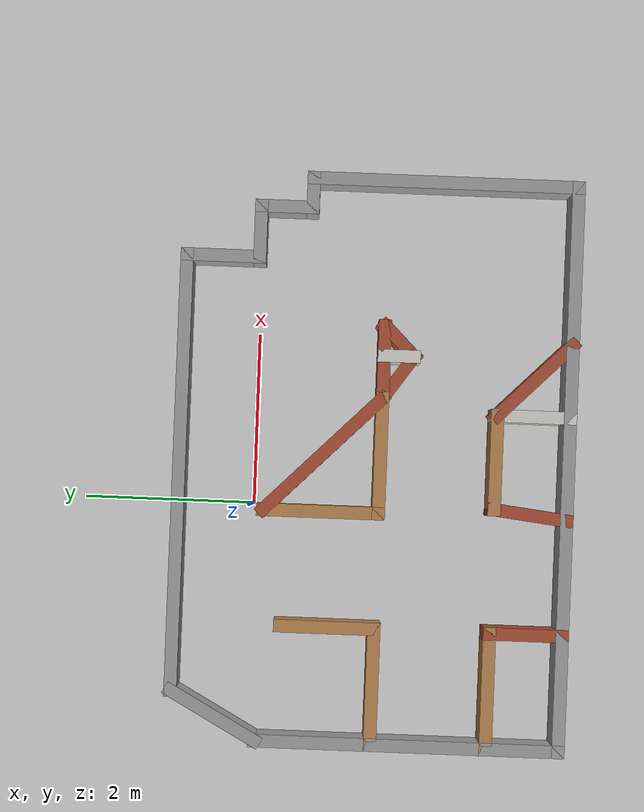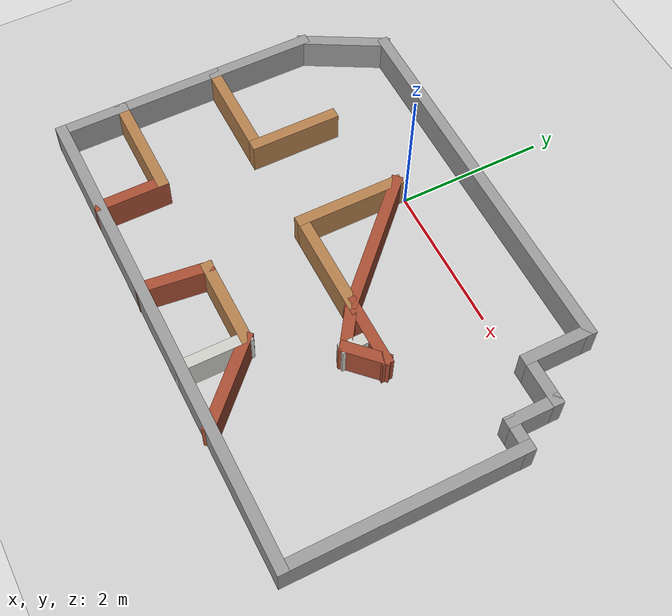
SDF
<sdf version="1.7">
 <world name="default">
  <light name="sun" type="directional">
   <pose>0 0 10 0 -0 0</pose>
   <diffuse>0.8 0.8 0.8 1</diffuse>
   <specular>0.2 0.2 0.2 1</specular>
   <attenuation>
    <range>1000</range>
    <constant>0.9</constant>
    <linear>0.01</linear>
    <quadratic>0.001</quadratic>
   </attenuation>
   <direction>-0.5 0.1 -0.9</direction>
   <spot><inner_angle>0</inner_angle><outer_angle>0</outer_angle><falloff>0</falloff></spot>
  </light>
  <model name="ground_plane">
   <static>1</static>
   <link name="link">
    <collision name="collision">
     <geometry><plane><normal>0 0 1</normal><size>100 100</size></plane></geometry>
     <surface>
      <contact><collide_bitmask>65535</collide_bitmask></contact>
      <friction><ode><mu>100</mu><mu2>50</mu2></ode></friction>
     </surface>
    </collision>
    <visual name="visual">
     <cast_shadows>0</cast_shadows>
     <geometry><plane><normal>0 0 1</normal><size>100 100</size></plane></geometry>
     <material>
      <script><uri>file://media/materials/scripts/gazebo.material</uri><name>Gazebo/Grey</name></script>
     </material>
    </visual>
   </link>
  </model>
  <gravity>0 0 -9.8</gravity>
  <magnetic_field>6e-06 2.3e-05 -4.2e-05</magnetic_field>
  <atmosphere type="adiabatic"/>
  <physics type="ode">
   <max_step_size>0.001</max_step_size>
   <real_time_factor>1</real_time_factor>
   <real_time_update_rate>1000</real_time_update_rate>
  </physics>
  <scene><ambient>0.4 0.4 0.4 1</ambient><background>0.7 0.7 0.7 1</background><shadows>1</shadows></scene>
  <spherical_coordinates>
   <surface_model>EARTH_WGS84</surface_model>
   <latitude_deg>0</latitude_deg>
   <longitude_deg>0</longitude_deg>
   <elevation>0</elevation>
   <heading_deg>0</heading_deg>
  </spherical_coordinates>
  <model name="iros24_1">
   <pose>0.51657 -1.3971 0 0 -0 0</pose>
   <link name="Wall_0">
    <collision name="Wall_0_Collision">
     <geometry><box><size>6.75 0.15 0.45</size></box></geometry>
     <pose>0 0 0.225 0 -0 0</pose>
    </collision>
    <visual name="Wall_0_Visual">
     <pose>0 0 0.225 0 -0 0</pose>
     <geometry><box><size>6.75 0.15 0.45</size></box></geometry>
     <material>
      <script><uri>file://media/materials/scripts/gazebo.material</uri><name>Gazebo/Grey</name></script>
      <ambient>1 1 1 1</ambient>
     </material>
     <meta><layer>0</layer></meta>
    </visual>
    <pose>0.01343 -2.2729 0 0 -0 0</pose>
   </link>
   <link name="Wall_11">
    <collision name="Wall_11_Collision">
     <geometry><box><size>1.5 0.15 0.45</size></box></geometry>
     <pose>0 0 0.225 0 -0 0</pose>
    </collision>
    <visual name="Wall_11_Visual">
     <pose>0 0 0.225 0 -0 0</pose>
     <geometry><box><size>1.5 0.15 0.45</size></box></geometry>
     <material>
      <script><uri>file://media/materials/scripts/gazebo.material</uri><name>Gazebo/Grey</name></script>
      <ambient>1 1 1 1</ambient>
     </material>
     <meta><layer>0</layer></meta>
    </visual>
    <pose>-3.28657 0.602103 0 0 -0 1.5708</pose>
   </link>
   <link name="Wall_21">
    <collision name="Wall_21_Collision">
     <geometry><box><size>1.25 0.15 0.45</size></box></geometry>
     <pose>0 0 0.225 0 -0 0</pose>
    </collision>
    <visual name="Wall_21_Visual">
     <pose>0 0 0.225 0 -0 0</pose>
     <geometry><box><size>1.25 0.15 0.45</size></box></geometry>
     <material>
      <script><uri>file://media/materials/scripts/gazebo.material</uri><name>Gazebo/Wood</name></script>
      <ambient>1 1 1 1</ambient>
     </material>
     <meta><layer>0</layer></meta>
    </visual>
    <pose>0.06343 -1.4229 0 0 -0 0</pose>
   </link>
   <link name="Wall_22">
    <collision name="Wall_22_Collision">
     <geometry><box><size>1 0.15 0.45</size></box></geometry>
     <pose>0 0 0.225 0 -0 0</pose>
    </collision>
    <visual name="Wall_22_Visual">
     <pose>0 0 0.225 0 -0 0</pose>
     <geometry><box><size>1 0.15 0.45</size></box></geometry>
     <material>
      <script><uri>file://media/materials/scripts/gazebo.material</uri><name>Gazebo/CeilingTiled</name></script>
      <ambient>1 1 1 1</ambient>
     </material>
     <meta><layer>0</layer></meta>
    </visual>
    <pose>0.61343 -1.8479 0 0 -0 -1.5708</pose>
   </link>
   <link name="Wall_24">
    <collision name="Wall_24_Collision">
     <geometry><box><size>1.35208 0.15 0.45</size></box></geometry>
     <pose>0 0 0.225 0 -0 0</pose>
    </collision>
    <visual name="Wall_24_Visual">
     <pose>0 0 0.225 0 -0 0</pose>
     <geometry><box><size>1.35208 0.15 0.45</size></box></geometry>
     <material>
      <script><uri>file://media/materials/scripts/gazebo.material</uri><name>Gazebo/Bricks</name></script>
      <ambient>1 1 1 1</ambient>
     </material>
     <meta><layer>0</layer></meta>
    </visual>
    <pose>1.03843 -1.8479 0 0 -0 2.35619</pose>
   </link>
   <link name="Wall_26">
    <collision name="Wall_26_Collision">
     <geometry><box><size>1.00586 0.15 0.45</size></box></geometry>
     <pose>0 0 0.225 0 -0 0</pose>
    </collision>
    <visual name="Wall_26_Visual">
     <pose>0 0 0.225 0 -0 0</pose>
     <geometry><box><size>1.00586 0.15 0.45</size></box></geometry>
     <material>
      <script><uri>file://media/materials/scripts/gazebo.material</uri><name>Gazebo/Bricks</name></script>
      <ambient>1 1 1 1</ambient>
     </material>
     <meta><layer>0</layer></meta>
    </visual>
    <pose>-0.53657 -1.8479 0 0 -0 1.45369</pose>
   </link>
   <link name="Wall_28">
    <collision name="Wall_28_Collision">
     <geometry><box><size>3.25 0.15 0.45</size></box></geometry>
     <pose>0 0 0.225 0 -0 0</pose>
    </collision>
    <visual name="Wall_28_Visual">
     <pose>0 0 0.225 0 -0 0</pose>
     <geometry><box><size>3.25 0.15 0.45</size></box></geometry>
     <material>
      <script><uri>file://media/materials/scripts/gazebo.material</uri><name>Gazebo/Grey</name></script>
      <ambient>1 1 1 1</ambient>
     </material>
     <meta><layer>0</layer></meta>
    </visual>
    <pose>3.31343 -0.722897 0 0 -0 1.5708</pose>
   </link>
   <link name="Wall_3">
    <collision name="Wall_3_Collision">
     <geometry><box><size>1 0.15 0.45</size></box></geometry>
     <pose>0 0 0.225 0 -0 0</pose>
    </collision>
    <visual name="Wall_3_Visual">
     <pose>0 0 0.225 0 -0 0</pose>
     <geometry><box><size>1 0.15 0.45</size></box></geometry>
     <material>
      <script><uri>file://media/materials/scripts/gazebo.material</uri><name>Gazebo/Grey</name></script>
      <ambient>1 1 1 1</ambient>
     </material>
     <meta><layer>0</layer></meta>
    </visual>
    <pose>-3.28657 -1.8479 0 0 -0 1.5708</pose>
   </link>
   <link name="Wall_30">
    <collision name="Wall_30_Collision">
     <geometry><box><size>0.5 0.15 0.45</size></box></geometry>
     <pose>0 0 0.225 0 -0 0</pose>
    </collision>
    <visual name="Wall_30_Visual">
     <pose>0 0 0.225 0 -0 0</pose>
     <geometry><box><size>0.5 0.15 0.45</size></box></geometry>
     <material>
      <script><uri>file://media/materials/scripts/gazebo.material</uri><name>Gazebo/Grey</name></script>
      <ambient>1 1 1 1</ambient>
     </material>
     <meta><layer>0</layer></meta>
    </visual>
    <pose>3.13843 0.827103 0 0 -0 3.14159</pose>
   </link>
   <link name="Wall_31">
    <collision name="Wall_31_Collision">
     <geometry><box><size>0.75 0.15 0.45</size></box></geometry>
     <pose>0 0 0.225 0 -0 0</pose>
    </collision>
    <visual name="Wall_31_Visual">
     <pose>0 0 0.225 0 -0 0</pose>
     <geometry><box><size>0.75 0.15 0.45</size></box></geometry>
     <material>
      <script><uri>file://media/materials/scripts/gazebo.material</uri><name>Gazebo/Grey</name></script>
      <ambient>1 1 1 1</ambient>
     </material>
     <meta><layer>0</layer></meta>
    </visual>
    <pose>2.96343 1.1271 0 0 -0 1.5708</pose>
   </link>
   <link name="Wall_32">
    <collision name="Wall_32_Collision">
     <geometry><box><size>0.75 0.15 0.45</size></box></geometry>
     <pose>0 0 0.225 0 -0 0</pose>
    </collision>
    <visual name="Wall_32_Visual">
     <pose>0 0 0.225 0 -0 0</pose>
     <geometry><box><size>0.75 0.15 0.45</size></box></geometry>
     <material>
      <script><uri>file://media/materials/scripts/gazebo.material</uri><name>Gazebo/Grey</name></script>
      <ambient>1 1 1 1</ambient>
     </material>
     <meta><layer>0</layer></meta>
    </visual>
    <pose>2.66343 1.4271 0 0 -0 3.14159</pose>
   </link>
   <link name="Wall_33">
    <collision name="Wall_33_Collision">
     <geometry><box><size>1 0.15 0.45</size></box></geometry>
     <pose>0 0 0.225 0 -0 0</pose>
    </collision>
    <visual name="Wall_33_Visual">
     <pose>0 0 0.225 0 -0 0</pose>
     <geometry><box><size>1 0.15 0.45</size></box></geometry>
     <material>
      <script><uri>file://media/materials/scripts/gazebo.material</uri><name>Gazebo/Grey</name></script>
      <ambient>1 1 1 1</ambient>
     </material>
     <meta><layer>0</layer></meta>
    </visual>
    <pose>2.36343 1.8521 0 0 -0 1.5708</pose>
   </link>
   <link name="Wall_34">
    <collision name="Wall_34_Collision">
     <geometry><box><size>5.25 0.15 0.45</size></box></geometry>
     <pose>0 0 0.225 0 -0 0</pose>
    </collision>
    <visual name="Wall_34_Visual">
     <pose>0 0 0.225 0 -0 0</pose>
     <geometry><box><size>5.25 0.15 0.45</size></box></geometry>
     <material>
      <script><uri>file://media/materials/scripts/gazebo.material</uri><name>Gazebo/Grey</name></script>
      <ambient>1 1 1 1</ambient>
     </material>
     <meta><layer>0</layer></meta>
    </visual>
    <pose>-0.18657 2.2771 0 0 -0 3.14159</pose>
   </link>
   <link name="Wall_37">
    <collision name="Wall_37_Collision">
     <geometry><box><size>1.29127 0.15 0.45</size></box></geometry>
     <pose>0 0 0.225 0 -0 0</pose>
    </collision>
    <visual name="Wall_37_Visual">
     <pose>0 0 0.225 0 -0 0</pose>
     <geometry><box><size>1.29127 0.15 0.45</size></box></geometry>
     <material>
      <script><uri>file://media/materials/scripts/gazebo.material</uri><name>Gazebo/Grey</name></script>
      <ambient>1 1 1 1</ambient>
     </material>
     <meta><layer>0</layer></meta>
    </visual>
    <pose>-3.01157 1.7771 0 0 -0 -2.07364</pose>
   </link>
   <link name="Wall_4">
    <collision name="Wall_4_Collision">
     <geometry><box><size>1.5 0.15 0.45</size></box></geometry>
     <pose>0 0 0.225 0 -0 0</pose>
    </collision>
    <visual name="Wall_4_Visual">
     <pose>0 0 0.225 0 -0 0</pose>
     <geometry><box><size>1.5 0.15 0.45</size></box></geometry>
     <material>
      <script><uri>file://media/materials/scripts/gazebo.material</uri><name>Gazebo/Wood</name></script>
      <ambient>1 1 1 1</ambient>
     </material>
     <meta><layer>0</layer></meta>
    </visual>
    <pose>-2.61157 -1.4229 0 0 -0 0</pose>
   </link>
   <link name="Wall_44">
    <collision name="Wall_44_Collision">
     <geometry><box><size>1.5 0.15 0.45</size></box></geometry>
     <pose>0 0 0.225 0 -0 0</pose>
    </collision>
    <visual name="Wall_44_Visual">
     <pose>0 0 0.225 0 -0 0</pose>
     <geometry><box><size>1.5 0.15 0.45</size></box></geometry>
     <material>
      <script><uri>file://media/materials/scripts/gazebo.material</uri><name>Gazebo/Wood</name></script>
      <ambient>1 1 1 1</ambient>
     </material>
     <meta><layer>0</layer></meta>
    </visual>
    <pose>0.08843 -0.072897 0 0 -0 0</pose>
   </link>
   <link name="Wall_45">
    <collision name="Wall_45_Collision">
     <geometry><box><size>1 0.15 0.45</size></box></geometry>
     <pose>0 0 0.225 0 -0 0</pose>
    </collision>
    <visual name="Wall_45_Visual">
     <pose>0 0 0.225 0 -0 0</pose>
     <geometry><box><size>1 0.15 0.45</size></box></geometry>
     <material>
      <script><uri>file://media/materials/scripts/gazebo.material</uri><name>Gazebo/Bricks</name></script>
      <ambient>1 1 1 1</ambient>
     </material>
     <meta><layer>0</layer></meta>
    </visual>
    <pose>1.18843 -0.072897 0 0 -0 0</pose>
   </link>
   <link name="Wall_47">
    <collision name="Wall_47_Collision">
     <geometry><box><size>0.5 0.15 0.45</size></box></geometry>
     <pose>0 0 0.225 0 -0 0</pose>
    </collision>
    <visual name="Wall_47_Visual">
     <pose>0 0 0.225 0 -0 0</pose>
     <geometry><box><size>0.5 0.15 0.45</size></box></geometry>
     <material>
      <script><uri>file://media/materials/scripts/gazebo.material</uri><name>Gazebo/CeilingTiled</name></script>
      <ambient>1 1 1 1</ambient>
     </material>
     <meta><layer>0</layer></meta>
    </visual>
    <pose>1.26343 -0.247897 0 0 -0 -1.5708</pose>
   </link>
   <link name="Wall_48">
    <collision name="Wall_48_Collision">
     <geometry><box><size>0.644975 0.15 0.45</size></box></geometry>
     <pose>0 0 0.225 0 -0 0</pose>
    </collision>
    <visual name="Wall_48_Visual">
     <pose>0 0 0.225 0 -0 0</pose>
     <geometry><box><size>0.644975 0.15 0.45</size></box></geometry>
     <material>
      <script><uri>file://media/materials/scripts/gazebo.material</uri><name>Gazebo/Bricks</name></script>
      <ambient>1 1 1 1</ambient>
     </material>
     <meta><layer>0</layer></meta>
    </visual>
    <pose>1.43843 -0.247897 0 0 -0 0.785398</pose>
   </link>
   <link name="Wall_5">
    <collision name="Wall_5_Collision">
     <geometry><box><size>1 0.15 0.45</size></box></geometry>
     <pose>0 0 0.225 0 -0 0</pose>
    </collision>
    <visual name="Wall_5_Visual">
     <pose>0 0 0.225 0 -0 0</pose>
     <geometry><box><size>1 0.15 0.45</size></box></geometry>
     <material>
      <script><uri>file://media/materials/scripts/gazebo.material</uri><name>Gazebo/Bricks</name></script>
      <ambient>1 1 1 1</ambient>
     </material>
     <meta><layer>0</layer></meta>
    </visual>
    <pose>-1.93657 -1.8479 0 0 -0 -1.5708</pose>
   </link>
   <link name="Wall_50">
    <collision name="Wall_50_Collision">
     <geometry><box><size>0.760328 0.15 0.45</size></box></geometry>
     <pose>0 0 0.225 0 -0 0</pose>
    </collision>
    <visual name="Wall_50_Visual">
     <pose>0 0 0.225 0 -0 0</pose>
     <geometry><box><size>0.760328 0.15 0.45</size></box></geometry>
     <material>
      <script><uri>file://media/materials/scripts/gazebo.material</uri><name>Gazebo/Bricks</name></script>
      <ambient>1 1 1 1</ambient>
     </material>
     <meta><layer>0</layer></meta>
    </visual>
    <pose>1.01343 -0.247897 0 0 -0 2.53087</pose>
   </link>
   <link name="Wall_55">
    <collision name="Wall_55_Collision">
     <geometry><box><size>1.5 0.15 0.45</size></box></geometry>
     <pose>0 0 0.225 0 -0 0</pose>
    </collision>
    <visual name="Wall_55_Visual">
     <pose>0 0 0.225 0 -0 0</pose>
     <geometry><box><size>1.5 0.15 0.45</size></box></geometry>
     <material>
      <script><uri>file://media/materials/scripts/gazebo.material</uri><name>Gazebo/Wood</name></script>
      <ambient>1 1 1 1</ambient>
     </material>
     <meta><layer>0</layer></meta>
    </visual>
    <pose>-0.58657 0.602103 0 0 -0 1.5708</pose>
   </link>
   <link name="Wall_56">
    <collision name="Wall_56_Collision">
     <geometry><box><size>2.05919 0.15 0.45</size></box></geometry>
     <pose>0 0 0.225 0 -0 0</pose>
    </collision>
    <visual name="Wall_56_Visual">
     <pose>0 0 0.225 0 -0 0</pose>
     <geometry><box><size>2.05919 0.15 0.45</size></box></geometry>
     <material>
      <script><uri>file://media/materials/scripts/gazebo.material</uri><name>Gazebo/Bricks</name></script>
      <ambient>1 1 1 1</ambient>
     </material>
     <meta><layer>0</layer></meta>
    </visual>
    <pose>0.08843 0.602103 0 0 -0 -0.785398</pose>
   </link>
   <link name="Wall_7">
    <collision name="Wall_7_Collision">
     <geometry><box><size>1.5 0.15 0.45</size></box></geometry>
     <pose>0 0 0.225 0 -0 0</pose>
    </collision>
    <visual name="Wall_7_Visual">
     <pose>0 0 0.225 0 -0 0</pose>
     <geometry><box><size>1.5 0.15 0.45</size></box></geometry>
     <material>
      <script><uri>file://media/materials/scripts/gazebo.material</uri><name>Gazebo/Grey</name></script>
      <ambient>1 1 1 1</ambient>
     </material>
     <meta><layer>0</layer></meta>
    </visual>
    <pose>-3.28657 -0.747897 0 0 -0 1.5708</pose>
   </link>
   <link name="Wall_8">
    <collision name="Wall_8_Collision">
     <geometry><box><size>1.5 0.15 0.45</size></box></geometry>
     <pose>0 0 0.225 0 -0 0</pose>
    </collision>
    <visual name="Wall_8_Visual">
     <pose>0 0 0.225 0 -0 0</pose>
     <geometry><box><size>1.5 0.15 0.45</size></box></geometry>
     <material>
      <script><uri>file://media/materials/scripts/gazebo.material</uri><name>Gazebo/Wood</name></script>
      <ambient>1 1 1 1</ambient>
     </material>
     <meta><layer>0</layer></meta>
    </visual>
    <pose>-2.61157 -0.072897 0 0 -0 0</pose>
   </link>
   <link name="Wall_9">
    <collision name="Wall_9_Collision">
     <geometry><box><size>1.25 0.15 0.45</size></box></geometry>
     <pose>0 0 0.225 0 -0 0</pose>
    </collision>
    <visual name="Wall_9_Visual">
     <pose>0 0 0.225 0 -0 0</pose>
     <geometry><box><size>1.25 0.15 0.45</size></box></geometry>
     <material>
      <script><uri>file://media/materials/scripts/gazebo.material</uri><name>Gazebo/Wood</name></script>
      <ambient>1 1 1 1</ambient>
     </material>
     <meta><layer>0</layer></meta>
    </visual>
    <pose>-1.93657 0.477103 0 0 -0 1.5708</pose>
   </link>
   <static>1</static>
  </model>
 </world>
</sdf>
